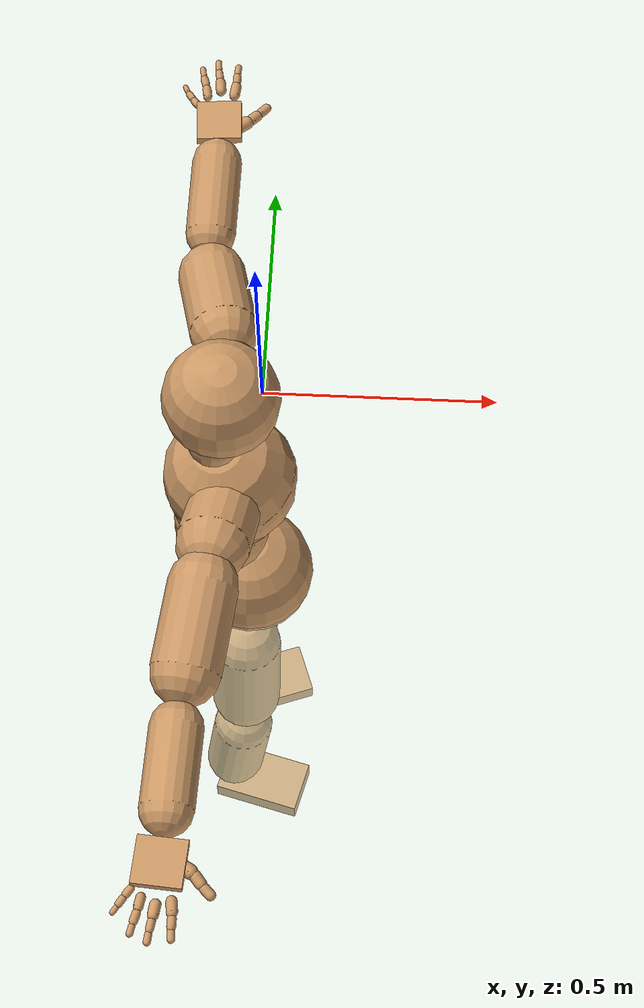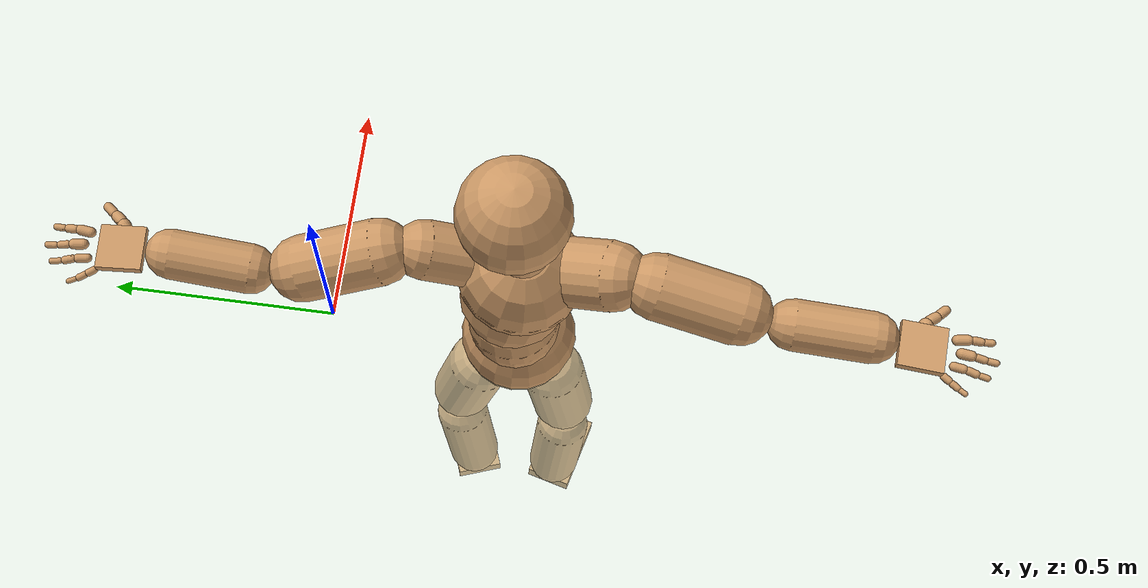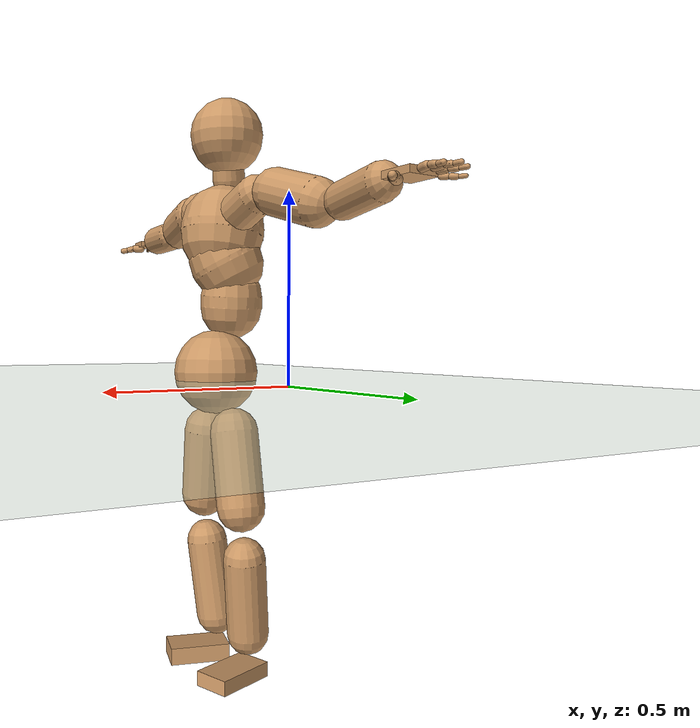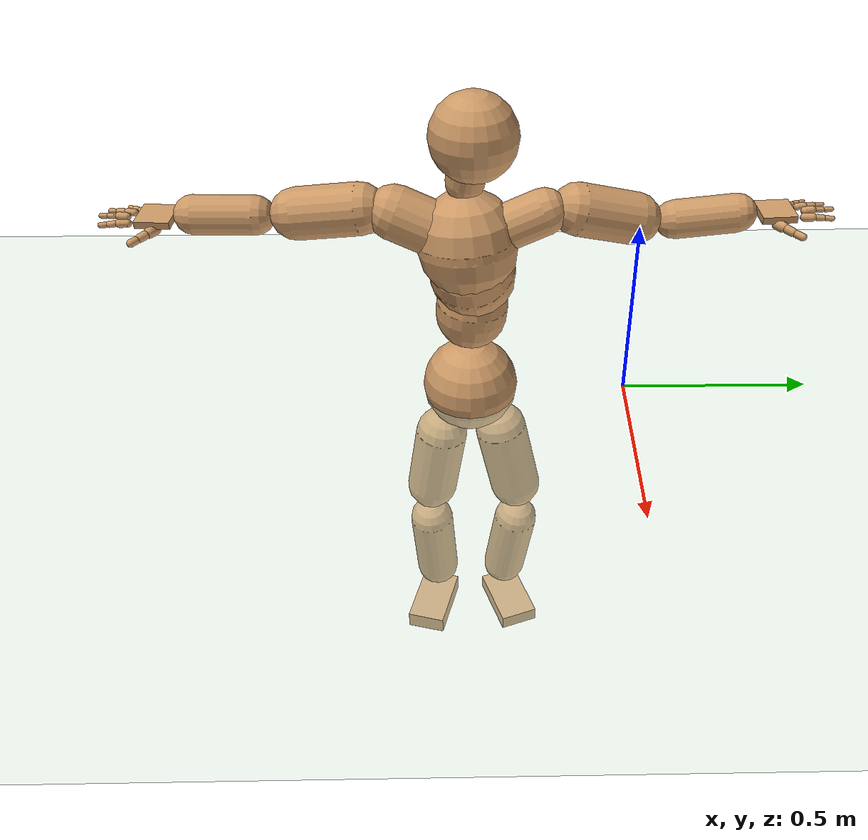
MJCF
<mujoco model="humanoid">
  <compiler coordinate="local" angle="radian"/>
  <default>
    <joint damping="0.0" armature="0.01" stiffness="0.0" limited="true"/>
    <geom conaffinity="1" condim="3" contype="7" margin="0.001" rgba="0.8 0.6 .4 1"/>
  </default>
  <asset>
    <texture type="skybox" builtin="gradient" rgb1=".4 .5 .6" rgb2="0 0 0" width="100" height="100"/>
    <texture builtin="flat" height="1278" mark="cross" markrgb="1 1 1" name="texgeom" random="0.01" rgb1="0.8 0.6 0.4" rgb2="0.8 0.6 0.4" type="cube" width="127"/>
    <texture builtin="checker" height="100" name="texplane" rgb1="0 0 0" rgb2="0.8 0.8 0.8" type="2d" width="100"/>
    <material name="MatPlane" reflectance="0.5" shininess="1" specular="1" texrepeat="60 60" texture="texplane"/>
    <material name="geom" texture="texgeom" texuniform="true"/>
  </asset>
  <worldbody>
    <light cutoff="100" diffuse="1 1 1" dir="-0 0 -1.3" directional="true" exponent="1" pos="0 0 1.3" specular=".1 .1 .1"/>
    <geom conaffinity="1" condim="3" name="floor" pos="0 0 0" rgba="0.8 0.9 0.8 1" size="100 100 .2" type="plane" material="MatPlane"/>
    <body name="Pelvis" pos="0.0021 -0.4209 0.0225">
      <freejoint name="Pelvis"/>
      <geom type="sphere" contype="1" conaffinity="1" density="500" size="0.1275" pos="0.0000 0.0000 0.0000" name="Pelvis"/>
      <body name="L_Hip" pos="-0.0188 0.0696 -0.1037">
        <joint name="L_Hip_x" type="hinge" pos="0 0 0" axis="1 0 0" stiffness="800" damping="80" armature="0.02" range="-180.0000 180.0000"/>
        <joint name="L_Hip_y" type="hinge" pos="0 0 0" axis="0 1 0" stiffness="800" damping="80" armature="0.02" range="-180.0000 180.0000"/>
        <joint name="L_Hip_z" type="hinge" pos="0 0 0" axis="0 0 1" stiffness="800" damping="80" armature="0.02" range="-180.0000 180.0000"/>
        <geom type="capsule" contype="1" conaffinity="1" density="500" fromto="0.0004 0.0150 -0.0736 0.0015 0.0602 -0.2943" size="0.0721" name="L_Hip"/>
        <body name="L_Knee" pos="0.0019 0.0752 -0.3679">
          <joint name="L_Knee_x" type="hinge" pos="0 0 0" axis="1 0 0" stiffness="800" damping="80" armature="0.02" range="-180.0000 180.0000"/>
          <joint name="L_Knee_y" type="hinge" pos="0 0 0" axis="0 1 0" stiffness="800" damping="80" armature="0.02" range="-180.0000 180.0000"/>
          <joint name="L_Knee_z" type="hinge" pos="0 0 0" axis="0 0 1" stiffness="800" damping="80" armature="0.02" range="-180.0000 180.0000"/>
          <geom type="capsule" contype="1" conaffinity="1" density="500" fromto="-0.0097 -0.0107 -0.0807 -0.0389 -0.0429 -0.3229" size="0.0632" name="L_Knee"/>
          <body name="L_Ankle" pos="-0.0486 -0.0536 -0.4036">
            <joint name="L_Ankle_x" type="hinge" pos="0 0 0" axis="1 0 0" stiffness="800" damping="80" armature="0.02" range="-180.0000 180.0000"/>
            <joint name="L_Ankle_y" type="hinge" pos="0 0 0" axis="0 1 0" stiffness="800" damping="80" armature="0.02" range="-180.0000 180.0000"/>
            <joint name="L_Ankle_z" type="hinge" pos="0 0 0" axis="0 0 1" stiffness="800" damping="80" armature="0.02" range="-180.0000 180.0000"/>
            <geom type="box" contype="1" conaffinity="1" density="500" pos="0.0681 0.0243 -0.0285" size="0.0946 0.0561 0.0223" quat="0.9854 0.0000 0.0000 0.1703" name="L_Ankle"/>
            <body name="L_Toe" pos="0.1361 0.0485 -0.0571">
              <joint name="L_Toe_x" type="hinge" pos="0 0 0" axis="1 0 0" stiffness="500" damping="50" armature="0.02" range="-180.0000 180.0000"/>
              <joint name="L_Toe_y" type="hinge" pos="0 0 0" axis="0 1 0" stiffness="500" damping="50" armature="0.02" range="-180.0000 180.0000"/>
              <joint name="L_Toe_z" type="hinge" pos="0 0 0" axis="0 0 1" stiffness="500" damping="50" armature="0.02" range="-180.0000 180.0000"/>
              <geom type="box" contype="1" conaffinity="1" density="500" pos="0.0000 0.0000 0.0295" size="0.0011 0.0026 0.0012" quat="0.9847 0.0000 0.0000 0.1744" name="L_Toe"/>
            </body>
          </body>
        </body>
      </body>
      <body name="R_Hip" pos="-0.0092 -0.0721 -0.1159">
        <joint name="R_Hip_x" type="hinge" pos="0 0 0" axis="1 0 0" stiffness="800" damping="80" armature="0.02" range="-180.0000 180.0000"/>
        <joint name="R_Hip_y" type="hinge" pos="0 0 0" axis="0 1 0" stiffness="800" damping="80" armature="0.02" range="-180.0000 180.0000"/>
        <joint name="R_Hip_z" type="hinge" pos="0 0 0" axis="0 0 1" stiffness="800" damping="80" armature="0.02" range="-180.0000 180.0000"/>
        <geom type="capsule" contype="1" conaffinity="1" density="500" fromto="-0.0017 -0.0112 -0.0702 -0.0069 -0.0446 -0.2809" size="0.0723" name="R_Hip"/>
        <body name="R_Knee" pos="-0.0086 -0.0558 -0.3511">
          <joint name="R_Knee_x" type="hinge" pos="0 0 0" axis="1 0 0" stiffness="800" damping="80" armature="0.02" range="-180.0000 180.0000"/>
          <joint name="R_Knee_y" type="hinge" pos="0 0 0" axis="0 1 0" stiffness="800" damping="80" armature="0.02" range="-180.0000 180.0000"/>
          <joint name="R_Knee_z" type="hinge" pos="0 0 0" axis="0 0 1" stiffness="800" damping="80" armature="0.02" range="-180.0000 180.0000"/>
          <geom type="capsule" contype="1" conaffinity="1" density="500" fromto="-0.0095 0.0038 -0.0831 -0.0380 0.0151 -0.3324" size="0.0635" name="R_Knee"/>
          <body name="R_Ankle" pos="-0.0476 0.0188 -0.4155">
            <joint name="R_Ankle_x" type="hinge" pos="0 0 0" axis="1 0 0" stiffness="800" damping="80" armature="0.02" range="-180.0000 180.0000"/>
            <joint name="R_Ankle_y" type="hinge" pos="0 0 0" axis="0 1 0" stiffness="800" damping="80" armature="0.02" range="-180.0000 180.0000"/>
            <joint name="R_Ankle_z" type="hinge" pos="0 0 0" axis="0 0 1" stiffness="800" damping="80" armature="0.02" range="-180.0000 180.0000"/>
            <geom type="box" contype="1" conaffinity="1" density="500" pos="0.0716 -0.0189 -0.0280" size="0.0946 0.0561 0.0266" quat="0.9917 0.0000 0.0000 -0.1284" name="R_Ankle"/>
            <body name="R_Toe" pos="0.1433 -0.0377 -0.0559">
              <joint name="R_Toe_x" type="hinge" pos="0 0 0" axis="1 0 0" stiffness="500" damping="50" armature="0.02" range="-180.0000 180.0000"/>
              <joint name="R_Toe_y" type="hinge" pos="0 0 0" axis="0 1 0" stiffness="500" damping="50" armature="0.02" range="-180.0000 180.0000"/>
              <joint name="R_Toe_z" type="hinge" pos="0 0 0" axis="0 0 1" stiffness="500" damping="50" armature="0.02" range="-180.0000 180.0000"/>
              <geom type="box" contype="1" conaffinity="1" density="500" pos="0.0000 0.0000 0.0246" size="0.0011 0.0026 0.0012" quat="0.9927 0.0000 0.0000 -0.1202" name="R_Toe"/>
            </body>
          </body>
        </body>
      </body>
      <body name="Torso" pos="-0.0511 -0.0027 0.1266">
        <joint name="Torso_x" type="hinge" pos="0 0 0" axis="1 0 0" stiffness="1000" damping="100" armature="0.02" range="-180.0000 180.0000"/>
        <joint name="Torso_y" type="hinge" pos="0 0 0" axis="0 1 0" stiffness="1000" damping="100" armature="0.02" range="-180.0000 180.0000"/>
        <joint name="Torso_z" type="hinge" pos="0 0 0" axis="0 0 1" stiffness="1000" damping="100" armature="0.02" range="-180.0000 180.0000"/>
        <geom type="capsule" contype="1" conaffinity="1" density="500" fromto="0.0017 0.0109 0.1049 0.0012 0.0073 0.0699" size="0.0947" name="Torso"/>
        <body name="Spine" pos="0.0029 0.0182 0.1748">
          <joint name="Spine_x" type="hinge" pos="0 0 0" axis="1 0 0" stiffness="1000" damping="100" armature="0.02" range="-180.0000 180.0000"/>
          <joint name="Spine_y" type="hinge" pos="0 0 0" axis="0 1 0" stiffness="1000" damping="100" armature="0.02" range="-180.0000 180.0000"/>
          <joint name="Spine_z" type="hinge" pos="0 0 0" axis="0 0 1" stiffness="1000" damping="100" armature="0.02" range="-180.0000 180.0000"/>
          <geom type="capsule" contype="1" conaffinity="1" density="500" fromto="0.0194 -0.0079 0.0398 0.0130 -0.0053 0.0265" size="0.1111" name="Spine"/>
          <body name="Chest" pos="0.0324 -0.0131 0.0663">
            <joint name="Chest_x" type="hinge" pos="0 0 0" axis="1 0 0" stiffness="1000" damping="100" armature="0.02" range="-180.0000 180.0000"/>
            <joint name="Chest_y" type="hinge" pos="0 0 0" axis="0 1 0" stiffness="1000" damping="100" armature="0.02" range="-180.0000 180.0000"/>
            <joint name="Chest_z" type="hinge" pos="0 0 0" axis="0 0 1" stiffness="1000" damping="100" armature="0.02" range="-180.0000 180.0000"/>
            <geom type="capsule" contype="1" conaffinity="1" density="500" fromto="-0.0103 -0.0052 0.0697 -0.0069 -0.0035 0.0465" size="0.1272" name="Chest"/>
            <body name="Neck" pos="-0.0377 -0.0151 0.1815">
              <joint name="Neck_x" type="hinge" pos="0 0 0" axis="1 0 0" stiffness="500" damping="50" armature="0.02" range="-180.0000 180.0000"/>
              <joint name="Neck_y" type="hinge" pos="0 0 0" axis="0 1 0" stiffness="500" damping="50" armature="0.02" range="-180.0000 180.0000"/>
              <joint name="Neck_z" type="hinge" pos="0 0 0" axis="0 0 1" stiffness="500" damping="50" armature="0.02" range="-180.0000 180.0000"/>
              <geom type="capsule" contype="1" conaffinity="1" density="500" fromto="0.0045 0.0055 0.0315 0.0181 0.0220 0.1261" size="0.0491" name="Neck"/>
              <body name="Head" pos="0.0226 0.0274 0.1576">
                <joint name="Head_x" type="hinge" pos="0 0 0" axis="1 0 0" stiffness="500" damping="50" armature="0.02" range="-180.0000 180.0000"/>
                <joint name="Head_y" type="hinge" pos="0 0 0" axis="0 1 0" stiffness="500" damping="50" armature="0.02" range="-180.0000 180.0000"/>
                <joint name="Head_z" type="hinge" pos="0 0 0" axis="0 0 1" stiffness="500" damping="50" armature="0.02" range="-180.0000 180.0000"/>
                <geom type="sphere" contype="1" conaffinity="1" density="500" size="0.1095" pos="0.0000 0.0000 0.0000" name="Head"/>
              </body>
            </body>
            <body name="L_Thorax" pos="-0.0056 0.048 0.0831">
              <joint name="L_Thorax_x" type="hinge" pos="0 0 0" axis="1 0 0" stiffness="500" damping="50" armature="0.02" range="-180.0000 180.0000"/>
              <joint name="L_Thorax_y" type="hinge" pos="0 0 0" axis="0 1 0" stiffness="500" damping="50" armature="0.02" range="-180.0000 180.0000"/>
              <joint name="L_Thorax_z" type="hinge" pos="0 0 0" axis="0 0 1" stiffness="500" damping="50" armature="0.02" range="-180.0000 180.0000"/>
              <geom type="capsule" contype="1" conaffinity="1" density="500" fromto="-0.0037 0.0341 0.0137 -0.0149 0.1363 0.0548" size="0.0593" name="L_Thorax"/>
              <body name="L_Shoulder" pos="-0.0186 0.1704 0.0685">
                <joint name="L_Shoulder_x" type="hinge" pos="0 0 0" axis="1 0 0" stiffness="500" damping="50" armature="0.02" range="-180.0000 180.0000"/>
                <joint name="L_Shoulder_y" type="hinge" pos="0 0 0" axis="0 1 0" stiffness="500" damping="50" armature="0.02" range="-180.0000 180.0000"/>
                <joint name="L_Shoulder_z" type="hinge" pos="0 0 0" axis="0 0 1" stiffness="500" damping="50" armature="0.02" range="-180.0000 180.0000"/>
                <geom type="capsule" contype="1" conaffinity="1" density="500" fromto="-0.0117 0.0498 -0.0159 -0.0467 0.1994 -0.0635" size="0.0669" name="L_Shoulder"/>
                <body name="L_Elbow" pos="-0.0584 0.2492 -0.0794">
                  <joint name="L_Elbow_x" type="hinge" pos="0 0 0" axis="1 0 0" stiffness="500" damping="50" armature="0.02" range="-720.0000 720.0000"/>
                  <joint name="L_Elbow_y" type="hinge" pos="0 0 0" axis="0 1 0" stiffness="500" damping="50" armature="0.02" range="-720.0000 720.0000"/>
                  <joint name="L_Elbow_z" type="hinge" pos="0 0 0" axis="0 0 1" stiffness="500" damping="50" armature="0.02" range="-720.0000 720.0000"/>
                  <geom type="capsule" contype="1" conaffinity="1" density="500" fromto="0.0010 0.0525 0.0062 0.0040 0.2100 0.0249" size="0.0496" name="L_Elbow"/>
                  <body name="L_Wrist" pos="0.0051 0.2625 0.0311">
                    <joint name="L_Wrist_x" type="hinge" pos="0 0 0" axis="1 0 0" stiffness="300" damping="30" armature="0.02" range="-180.0000 180.0000"/>
                    <joint name="L_Wrist_y" type="hinge" pos="0 0 0" axis="0 1 0" stiffness="300" damping="30" armature="0.02" range="-180.0000 180.0000"/>
                    <joint name="L_Wrist_z" type="hinge" pos="0 0 0" axis="0 0 1" stiffness="300" damping="30" armature="0.02" range="-180.0000 180.0000"/>
                    <geom type="box" contype="1" conaffinity="1" density="500" pos="-0.0030 0.0450 -0.0053" size="0.0448 0.0452 0.0092" quat="0.7303 0.0000 0.0000 -0.6831" name="L_Wrist"/>
                    <body name="L_Index1" pos="0.0225 0.1061 -0.0074">
                      <joint name="L_Index1_x" type="hinge" pos="0 0 0" axis="1 0 0" stiffness="100" damping="10" armature="0.02" range="-180.0000 180.0000"/>
                      <joint name="L_Index1_y" type="hinge" pos="0 0 0" axis="0 1 0" stiffness="100" damping="10" armature="0.02" range="-180.0000 180.0000"/>
                      <joint name="L_Index1_z" type="hinge" pos="0 0 0" axis="0 0 1" stiffness="100" damping="10" armature="0.02" range="-180.0000 180.0000"/>
                      <geom type="capsule" contype="1" conaffinity="1" density="500" fromto="0.0008 0.0066 0.0004 0.0031 0.0266 0.0015" size="0.0104" name="L_Index1"/>
                      <body name="L_Index2" pos="0.0038 0.0332 0.0019">
                        <joint name="L_Index2_x" type="hinge" pos="0 0 0" axis="1 0 0" stiffness="100" damping="10" armature="0.02" range="-180.0000 180.0000"/>
                        <joint name="L_Index2_y" type="hinge" pos="0 0 0" axis="0 1 0" stiffness="100" damping="10" armature="0.02" range="-180.0000 180.0000"/>
                        <joint name="L_Index2_z" type="hinge" pos="0 0 0" axis="0 0 1" stiffness="100" damping="10" armature="0.02" range="-180.0000 180.0000"/>
                        <geom type="capsule" contype="1" conaffinity="1" density="500" fromto="-0.0001 0.0046 -0.0006 -0.0003 0.0186 -0.0024" size="0.0083" name="L_Index2"/>
                        <body name="L_Index3" pos="-0.0004 0.0232 -0.003">
                          <joint name="L_Index3_x" type="hinge" pos="0 0 0" axis="1 0 0" stiffness="100" damping="10" armature="0.02" range="-180.0000 180.0000"/>
                          <joint name="L_Index3_y" type="hinge" pos="0 0 0" axis="0 1 0" stiffness="100" damping="10" armature="0.02" range="-180.0000 180.0000"/>
                          <joint name="L_Index3_z" type="hinge" pos="0 0 0" axis="0 0 1" stiffness="100" damping="10" armature="0.02" range="-180.0000 180.0000"/>
                          <geom type="capsule" contype="1" conaffinity="1" density="500" fromto="0.0003 0.0050 -0.0002 0.0013 0.0202 -0.0008" size="0.0069" name="L_Index3"/>
                        </body>
                      </body>
                    </body>
                    <body name="L_Middle1" pos="-0.0034 0.114 -0.004">
                      <joint name="L_Middle1_x" type="hinge" pos="0 0 0" axis="1 0 0" stiffness="100" damping="10" armature="0.02" range="-180.0000 180.0000"/>
                      <joint name="L_Middle1_y" type="hinge" pos="0 0 0" axis="0 1 0" stiffness="100" damping="10" armature="0.02" range="-180.0000 180.0000"/>
                      <joint name="L_Middle1_z" type="hinge" pos="0 0 0" axis="0 0 1" stiffness="100" damping="10" armature="0.02" range="-180.0000 180.0000"/>
                      <geom type="capsule" contype="1" conaffinity="1" density="500" fromto="-0.0008 0.0063 0.0002 -0.0034 0.0253 0.0007" size="0.0104" name="L_Middle1"/>
                      <body name="L_Middle2" pos="-0.0042 0.0317 0.0009">
                        <joint name="L_Middle2_x" type="hinge" pos="0 0 0" axis="1 0 0" stiffness="100" damping="10" armature="0.02" range="-180.0000 180.0000"/>
                        <joint name="L_Middle2_y" type="hinge" pos="0 0 0" axis="0 1 0" stiffness="100" damping="10" armature="0.02" range="-180.0000 180.0000"/>
                        <joint name="L_Middle2_z" type="hinge" pos="0 0 0" axis="0 0 1" stiffness="100" damping="10" armature="0.02" range="-180.0000 180.0000"/>
                        <geom type="capsule" contype="1" conaffinity="1" density="500" fromto="-0.0009 0.0048 -0.0005 -0.0035 0.0192 -0.0021" size="0.0076" name="L_Middle2"/>
                        <body name="L_Middle3" pos="-0.0044 0.0239 -0.0026">
                          <joint name="L_Middle3_x" type="hinge" pos="0 0 0" axis="1 0 0" stiffness="100" damping="10" armature="0.02" range="-180.0000 180.0000"/>
                          <joint name="L_Middle3_y" type="hinge" pos="0 0 0" axis="0 1 0" stiffness="100" damping="10" armature="0.02" range="-180.0000 180.0000"/>
                          <joint name="L_Middle3_z" type="hinge" pos="0 0 0" axis="0 0 1" stiffness="100" damping="10" armature="0.02" range="-180.0000 180.0000"/>
                          <geom type="capsule" contype="1" conaffinity="1" density="500" fromto="-0.0005 0.0052 -0.0001 -0.0019 0.0208 -0.0005" size="0.0065" name="L_Middle3"/>
                        </body>
                      </body>
                    </body>
                    <body name="L_Pinky1" pos="-0.0484 0.0875 -0.0138">
                      <joint name="L_Pinky1_x" type="hinge" pos="0 0 0" axis="1 0 0" stiffness="100" damping="10" armature="0.02" range="-180.0000 180.0000"/>
                      <joint name="L_Pinky1_y" type="hinge" pos="0 0 0" axis="0 1 0" stiffness="100" damping="10" armature="0.02" range="-180.0000 180.0000"/>
                      <joint name="L_Pinky1_z" type="hinge" pos="0 0 0" axis="0 0 1" stiffness="100" damping="10" armature="0.02" range="-180.0000 180.0000"/>
                      <geom type="capsule" contype="1" conaffinity="1" density="500" fromto="-0.0024 0.0034 -0.0004 -0.0098 0.0137 -0.0015" size="0.0075" name="L_Pinky1"/>
                      <body name="L_Pinky2" pos="-0.0122 0.0172 -0.0019">
                        <joint name="L_Pinky2_x" type="hinge" pos="0 0 0" axis="1 0 0" stiffness="100" damping="10" armature="0.02" range="-180.0000 180.0000"/>
                        <joint name="L_Pinky2_y" type="hinge" pos="0 0 0" axis="0 1 0" stiffness="100" damping="10" armature="0.02" range="-180.0000 180.0000"/>
                        <joint name="L_Pinky2_z" type="hinge" pos="0 0 0" axis="0 0 1" stiffness="100" damping="10" armature="0.02" range="-180.0000 180.0000"/>
                        <geom type="capsule" contype="1" conaffinity="1" density="500" fromto="-0.0022 0.0034 -0.0005 -0.0089 0.0135 -0.0019" size="0.007" name="L_Pinky2"/>
                        <body name="L_Pinky3" pos="-0.0111 0.0169 -0.0024">
                          <joint name="L_Pinky3_x" type="hinge" pos="0 0 0" axis="1 0 0" stiffness="100" damping="10" armature="0.02" range="-180.0000 180.0000"/>
                          <joint name="L_Pinky3_y" type="hinge" pos="0 0 0" axis="0 1 0" stiffness="100" damping="10" armature="0.02" range="-180.0000 180.0000"/>
                          <joint name="L_Pinky3_z" type="hinge" pos="0 0 0" axis="0 0 1" stiffness="100" damping="10" armature="0.02" range="-180.0000 180.0000"/>
                          <geom type="capsule" contype="1" conaffinity="1" density="500" fromto="-0.0018 0.0038 -0.0001 -0.0073 0.0151 -0.0003" size="0.0052" name="L_Pinky3"/>
                        </body>
                      </body>
                    </body>
                    <body name="L_Ring1" pos="-0.0299 0.1015 -0.0072">
                      <joint name="L_Ring1_x" type="hinge" pos="0 0 0" axis="1 0 0" stiffness="100" damping="10" armature="0.02" range="-180.0000 180.0000"/>
                      <joint name="L_Ring1_y" type="hinge" pos="0 0 0" axis="0 1 0" stiffness="100" damping="10" armature="0.02" range="-180.0000 180.0000"/>
                      <joint name="L_Ring1_z" type="hinge" pos="0 0 0" axis="0 0 1" stiffness="100" damping="10" armature="0.02" range="-180.0000 180.0000"/>
                      <geom type="capsule" contype="1" conaffinity="1" density="500" fromto="-0.0010 0.0059 0.0002 -0.0040 0.0237 0.0007" size="0.0089" name="L_Ring1"/>
                      <body name="L_Ring2" pos="-0.005 0.0296 0.0008">
                        <joint name="L_Ring2_x" type="hinge" pos="0 0 0" axis="1 0 0" stiffness="100" damping="10" armature="0.02" range="-180.0000 180.0000"/>
                        <joint name="L_Ring2_y" type="hinge" pos="0 0 0" axis="0 1 0" stiffness="100" damping="10" armature="0.02" range="-180.0000 180.0000"/>
                        <joint name="L_Ring2_z" type="hinge" pos="0 0 0" axis="0 0 1" stiffness="100" damping="10" armature="0.02" range="-180.0000 180.0000"/>
                        <geom type="capsule" contype="1" conaffinity="1" density="500" fromto="-0.0013 0.0048 -0.0005 -0.0054 0.0191 -0.0021" size="0.008" name="L_Ring2"/>
                        <body name="L_Ring3" pos="-0.0067 0.0238 -0.0026">
                          <joint name="L_Ring3_x" type="hinge" pos="0 0 0" axis="1 0 0" stiffness="100" damping="10" armature="0.02" range="-180.0000 180.0000"/>
                          <joint name="L_Ring3_y" type="hinge" pos="0 0 0" axis="0 1 0" stiffness="100" damping="10" armature="0.02" range="-180.0000 180.0000"/>
                          <joint name="L_Ring3_z" type="hinge" pos="0 0 0" axis="0 0 1" stiffness="100" damping="10" armature="0.02" range="-180.0000 180.0000"/>
                          <geom type="capsule" contype="1" conaffinity="1" density="500" fromto="-0.0009 0.0052 -0.0001 -0.0038 0.0207 -0.0005" size="0.0061" name="L_Ring3"/>
                        </body>
                      </body>
                    </body>
                    <body name="L_Thumb1" pos="0.0292 0.041 -0.0209">
                      <joint name="L_Thumb1_x" type="hinge" pos="0 0 0" axis="1 0 0" stiffness="100" damping="10" armature="0.02" range="-180.0000 180.0000"/>
                      <joint name="L_Thumb1_y" type="hinge" pos="0 0 0" axis="0 1 0" stiffness="100" damping="10" armature="0.02" range="-180.0000 180.0000"/>
                      <joint name="L_Thumb1_z" type="hinge" pos="0 0 0" axis="0 0 1" stiffness="100" damping="10" armature="0.02" range="-180.0000 180.0000"/>
                      <geom type="capsule" contype="1" conaffinity="1" density="500" fromto="0.0056 0.0034 0.0006 0.0222 0.0136 0.0024" size="0.0138" name="L_Thumb1"/>
                      <body name="L_Thumb2" pos="0.0278 0.0169 0.003">
                        <joint name="L_Thumb2_x" type="hinge" pos="0 0 0" axis="1 0 0" stiffness="100" damping="10" armature="0.02" range="-180.0000 180.0000"/>
                        <joint name="L_Thumb2_y" type="hinge" pos="0 0 0" axis="0 1 0" stiffness="100" damping="10" armature="0.02" range="-180.0000 180.0000"/>
                        <joint name="L_Thumb2_z" type="hinge" pos="0 0 0" axis="0 0 1" stiffness="100" damping="10" armature="0.02" range="-180.0000 180.0000"/>
                        <geom type="capsule" contype="1" conaffinity="1" density="500" fromto="0.0034 0.0041 -0.0010 0.0135 0.0164 -0.0042" size="0.0111" name="L_Thumb2"/>
                        <body name="L_Thumb3" pos="0.0169 0.0205 -0.0052">
                          <joint name="L_Thumb3_x" type="hinge" pos="0 0 0" axis="1 0 0" stiffness="100" damping="10" armature="0.02" range="-180.0000 180.0000"/>
                          <joint name="L_Thumb3_y" type="hinge" pos="0 0 0" axis="0 1 0" stiffness="100" damping="10" armature="0.02" range="-180.0000 180.0000"/>
                          <joint name="L_Thumb3_z" type="hinge" pos="0 0 0" axis="0 0 1" stiffness="100" damping="10" armature="0.02" range="-180.0000 180.0000"/>
                          <geom type="capsule" contype="1" conaffinity="1" density="500" fromto="0.0038 0.0045 -0.0006 0.0151 0.0180 -0.0026" size="0.0097" name="L_Thumb3"/>
                        </body>
                      </body>
                    </body>
                  </body>
                </body>
              </body>
            </body>
            <body name="R_Thorax" pos="-0.0084 -0.0589 0.0841">
              <joint name="R_Thorax_x" type="hinge" pos="0 0 0" axis="1 0 0" stiffness="500" damping="50" armature="0.02" range="-180.0000 180.0000"/>
              <joint name="R_Thorax_y" type="hinge" pos="0 0 0" axis="0 1 0" stiffness="500" damping="50" armature="0.02" range="-180.0000 180.0000"/>
              <joint name="R_Thorax_z" type="hinge" pos="0 0 0" axis="0 0 1" stiffness="500" damping="50" armature="0.02" range="-180.0000 180.0000"/>
              <geom type="capsule" contype="1" conaffinity="1" density="500" fromto="-0.0045 -0.0312 0.0130 -0.0179 -0.1247 0.0518" size="0.0699" name="R_Thorax"/>
              <body name="R_Shoulder" pos="-0.0223 -0.1559 0.0648">
                <joint name="R_Shoulder_x" type="hinge" pos="0 0 0" axis="1 0 0" stiffness="500" damping="50" armature="0.02" range="-180.0000 180.0000"/>
                <joint name="R_Shoulder_y" type="hinge" pos="0 0 0" axis="0 1 0" stiffness="500" damping="50" armature="0.02" range="-180.0000 180.0000"/>
                <joint name="R_Shoulder_z" type="hinge" pos="0 0 0" axis="0 0 1" stiffness="500" damping="50" armature="0.02" range="-180.0000 180.0000"/>
                <geom type="capsule" contype="1" conaffinity="1" density="500" fromto="-0.0073 -0.0539 -0.0081 -0.0291 -0.2154 -0.0324" size="0.0663" name="R_Shoulder"/>
                <body name="R_Elbow" pos="-0.0363 -0.2693 -0.0404">
                  <joint name="R_Elbow_x" type="hinge" pos="0 0 0" axis="1 0 0" stiffness="500" damping="50" armature="0.02" range="-720.0000 720.0000"/>
                  <joint name="R_Elbow_y" type="hinge" pos="0 0 0" axis="0 1 0" stiffness="500" damping="50" armature="0.02" range="-720.0000 720.0000"/>
                  <joint name="R_Elbow_z" type="hinge" pos="0 0 0" axis="0 0 1" stiffness="500" damping="50" armature="0.02" range="-720.0000 720.0000"/>
                  <geom type="capsule" contype="1" conaffinity="1" density="500" fromto="-0.0019 -0.0511 -0.0002 -0.0076 -0.2045 -0.0008" size="0.0507" name="R_Elbow"/>
                  <body name="R_Wrist" pos="-0.0095 -0.2557 -0.001">
                    <joint name="R_Wrist_x" type="hinge" pos="0 0 0" axis="1 0 0" stiffness="300" damping="30" armature="0.02" range="-180.0000 180.0000"/>
                    <joint name="R_Wrist_y" type="hinge" pos="0 0 0" axis="0 1 0" stiffness="300" damping="30" armature="0.02" range="-180.0000 180.0000"/>
                    <joint name="R_Wrist_z" type="hinge" pos="0 0 0" axis="0 0 1" stiffness="300" damping="30" armature="0.02" range="-180.0000 180.0000"/>
                    <geom type="box" contype="1" conaffinity="1" density="500" pos="-0.0035 -0.0447 -0.0074" size="0.0448 0.0463 0.0094" quat="0.7342 0.0000 0.0000 0.6790" name="R_Wrist"/>
                    <body name="R_Index1" pos="0.0215 -0.1054 -0.0116">
                      <joint name="R_Index1_x" type="hinge" pos="0 0 0" axis="1 0 0" stiffness="100" damping="10" armature="0.02" range="-180.0000 180.0000"/>
                      <joint name="R_Index1_y" type="hinge" pos="0 0 0" axis="0 1 0" stiffness="100" damping="10" armature="0.02" range="-180.0000 180.0000"/>
                      <joint name="R_Index1_z" type="hinge" pos="0 0 0" axis="0 0 1" stiffness="100" damping="10" armature="0.02" range="-180.0000 180.0000"/>
                      <geom type="capsule" contype="1" conaffinity="1" density="500" fromto="0.0008 -0.0066 0.0004 0.0031 -0.0266 0.0015" size="0.0104" name="R_Index1"/>
                      <body name="R_Index2" pos="0.0038 -0.0332 0.0019">
                        <joint name="R_Index2_x" type="hinge" pos="0 0 0" axis="1 0 0" stiffness="100" damping="10" armature="0.02" range="-180.0000 180.0000"/>
                        <joint name="R_Index2_y" type="hinge" pos="0 0 0" axis="0 1 0" stiffness="100" damping="10" armature="0.02" range="-180.0000 180.0000"/>
                        <joint name="R_Index2_z" type="hinge" pos="0 0 0" axis="0 0 1" stiffness="100" damping="10" armature="0.02" range="-180.0000 180.0000"/>
                        <geom type="capsule" contype="1" conaffinity="1" density="500" fromto="-0.0001 -0.0046 -0.0006 -0.0003 -0.0186 -0.0024" size="0.0083" name="R_Index2"/>
                        <body name="R_Index3" pos="-0.0004 -0.0232 -0.003">
                          <joint name="R_Index3_x" type="hinge" pos="0 0 0" axis="1 0 0" stiffness="100" damping="10" armature="0.02" range="-180.0000 180.0000"/>
                          <joint name="R_Index3_y" type="hinge" pos="0 0 0" axis="0 1 0" stiffness="100" damping="10" armature="0.02" range="-180.0000 180.0000"/>
                          <joint name="R_Index3_z" type="hinge" pos="0 0 0" axis="0 0 1" stiffness="100" damping="10" armature="0.02" range="-180.0000 180.0000"/>
                          <geom type="capsule" contype="1" conaffinity="1" density="500" fromto="0.0003 -0.0042 -0.0002 0.0013 -0.0170 -0.0008" size="0.0072" name="R_Index3"/>
                        </body>
                      </body>
                    </body>
                    <body name="R_Middle1" pos="-0.0044 -0.1134 -0.0081">
                      <joint name="R_Middle1_x" type="hinge" pos="0 0 0" axis="1 0 0" stiffness="100" damping="10" armature="0.02" range="-180.0000 180.0000"/>
                      <joint name="R_Middle1_y" type="hinge" pos="0 0 0" axis="0 1 0" stiffness="100" damping="10" armature="0.02" range="-180.0000 180.0000"/>
                      <joint name="R_Middle1_z" type="hinge" pos="0 0 0" axis="0 0 1" stiffness="100" damping="10" armature="0.02" range="-180.0000 180.0000"/>
                      <geom type="capsule" contype="1" conaffinity="1" density="500" fromto="-0.0008 -0.0063 0.0002 -0.0034 -0.0253 0.0007" size="0.0104" name="R_Middle1"/>
                      <body name="R_Middle2" pos="-0.0042 -0.0317 0.0009">
                        <joint name="R_Middle2_x" type="hinge" pos="0 0 0" axis="1 0 0" stiffness="100" damping="10" armature="0.02" range="-180.0000 180.0000"/>
                        <joint name="R_Middle2_y" type="hinge" pos="0 0 0" axis="0 1 0" stiffness="100" damping="10" armature="0.02" range="-180.0000 180.0000"/>
                        <joint name="R_Middle2_z" type="hinge" pos="0 0 0" axis="0 0 1" stiffness="100" damping="10" armature="0.02" range="-180.0000 180.0000"/>
                        <geom type="capsule" contype="1" conaffinity="1" density="500" fromto="-0.0009 -0.0048 -0.0005 -0.0035 -0.0192 -0.0021" size="0.0076" name="R_Middle2"/>
                        <body name="R_Middle3" pos="-0.0044 -0.0239 -0.0026">
                          <joint name="R_Middle3_x" type="hinge" pos="0 0 0" axis="1 0 0" stiffness="100" damping="10" armature="0.02" range="-180.0000 180.0000"/>
                          <joint name="R_Middle3_y" type="hinge" pos="0 0 0" axis="0 1 0" stiffness="100" damping="10" armature="0.02" range="-180.0000 180.0000"/>
                          <joint name="R_Middle3_z" type="hinge" pos="0 0 0" axis="0 0 1" stiffness="100" damping="10" armature="0.02" range="-180.0000 180.0000"/>
                          <geom type="capsule" contype="1" conaffinity="1" density="500" fromto="-0.0005 -0.0044 -0.0001 -0.0019 -0.0176 -0.0005" size="0.0068" name="R_Middle3"/>
                        </body>
                      </body>
                    </body>
                    <body name="R_Pinky1" pos="-0.0494 -0.0868 -0.0179">
                      <joint name="R_Pinky1_x" type="hinge" pos="0 0 0" axis="1 0 0" stiffness="100" damping="10" armature="0.02" range="-180.0000 180.0000"/>
                      <joint name="R_Pinky1_y" type="hinge" pos="0 0 0" axis="0 1 0" stiffness="100" damping="10" armature="0.02" range="-180.0000 180.0000"/>
                      <joint name="R_Pinky1_z" type="hinge" pos="0 0 0" axis="0 0 1" stiffness="100" damping="10" armature="0.02" range="-180.0000 180.0000"/>
                      <geom type="capsule" contype="1" conaffinity="1" density="500" fromto="-0.0024 -0.0034 -0.0004 -0.0098 -0.0137 -0.0015" size="0.0075" name="R_Pinky1"/>
                      <body name="R_Pinky2" pos="-0.0122 -0.0172 -0.0019">
                        <joint name="R_Pinky2_x" type="hinge" pos="0 0 0" axis="1 0 0" stiffness="100" damping="10" armature="0.02" range="-180.0000 180.0000"/>
                        <joint name="R_Pinky2_y" type="hinge" pos="0 0 0" axis="0 1 0" stiffness="100" damping="10" armature="0.02" range="-180.0000 180.0000"/>
                        <joint name="R_Pinky2_z" type="hinge" pos="0 0 0" axis="0 0 1" stiffness="100" damping="10" armature="0.02" range="-180.0000 180.0000"/>
                        <geom type="capsule" contype="1" conaffinity="1" density="500" fromto="-0.0022 -0.0034 -0.0005 -0.0089 -0.0135 -0.0019" size="0.007" name="R_Pinky2"/>
                        <body name="R_Pinky3" pos="-0.0111 -0.0169 -0.0024">
                          <joint name="R_Pinky3_x" type="hinge" pos="0 0 0" axis="1 0 0" stiffness="100" damping="10" armature="0.02" range="-180.0000 180.0000"/>
                          <joint name="R_Pinky3_y" type="hinge" pos="0 0 0" axis="0 1 0" stiffness="100" damping="10" armature="0.02" range="-180.0000 180.0000"/>
                          <joint name="R_Pinky3_z" type="hinge" pos="0 0 0" axis="0 0 1" stiffness="100" damping="10" armature="0.02" range="-180.0000 180.0000"/>
                          <geom type="capsule" contype="1" conaffinity="1" density="500" fromto="-0.0018 -0.0030 -0.0001 -0.0073 -0.0119 -0.0003" size="0.0054" name="R_Pinky3"/>
                        </body>
                      </body>
                    </body>
                    <body name="R_Ring1" pos="-0.0309 -0.1009 -0.0114">
                      <joint name="R_Ring1_x" type="hinge" pos="0 0 0" axis="1 0 0" stiffness="100" damping="10" armature="0.02" range="-180.0000 180.0000"/>
                      <joint name="R_Ring1_y" type="hinge" pos="0 0 0" axis="0 1 0" stiffness="100" damping="10" armature="0.02" range="-180.0000 180.0000"/>
                      <joint name="R_Ring1_z" type="hinge" pos="0 0 0" axis="0 0 1" stiffness="100" damping="10" armature="0.02" range="-180.0000 180.0000"/>
                      <geom type="capsule" contype="1" conaffinity="1" density="500" fromto="-0.0010 -0.0059 0.0002 -0.0040 -0.0237 0.0007" size="0.0089" name="R_Ring1"/>
                      <body name="R_Ring2" pos="-0.005 -0.0296 0.0008">
                        <joint name="R_Ring2_x" type="hinge" pos="0 0 0" axis="1 0 0" stiffness="100" damping="10" armature="0.02" range="-180.0000 180.0000"/>
                        <joint name="R_Ring2_y" type="hinge" pos="0 0 0" axis="0 1 0" stiffness="100" damping="10" armature="0.02" range="-180.0000 180.0000"/>
                        <joint name="R_Ring2_z" type="hinge" pos="0 0 0" axis="0 0 1" stiffness="100" damping="10" armature="0.02" range="-180.0000 180.0000"/>
                        <geom type="capsule" contype="1" conaffinity="1" density="500" fromto="-0.0013 -0.0048 -0.0005 -0.0054 -0.0191 -0.0021" size="0.008" name="R_Ring2"/>
                        <body name="R_Ring3" pos="-0.0067 -0.0238 -0.0026">
                          <joint name="R_Ring3_x" type="hinge" pos="0 0 0" axis="1 0 0" stiffness="100" damping="10" armature="0.02" range="-180.0000 180.0000"/>
                          <joint name="R_Ring3_y" type="hinge" pos="0 0 0" axis="0 1 0" stiffness="100" damping="10" armature="0.02" range="-180.0000 180.0000"/>
                          <joint name="R_Ring3_z" type="hinge" pos="0 0 0" axis="0 0 1" stiffness="100" damping="10" armature="0.02" range="-180.0000 180.0000"/>
                          <geom type="capsule" contype="1" conaffinity="1" density="500" fromto="-0.0009 -0.0044 -0.0001 -0.0038 -0.0175 -0.0005" size="0.0064" name="R_Ring3"/>
                        </body>
                      </body>
                    </body>
                    <body name="R_Thumb1" pos="0.0282 -0.0403 -0.025">
                      <joint name="R_Thumb1_x" type="hinge" pos="0 0 0" axis="1 0 0" stiffness="100" damping="10" armature="0.02" range="-180.0000 180.0000"/>
                      <joint name="R_Thumb1_y" type="hinge" pos="0 0 0" axis="0 1 0" stiffness="100" damping="10" armature="0.02" range="-180.0000 180.0000"/>
                      <joint name="R_Thumb1_z" type="hinge" pos="0 0 0" axis="0 0 1" stiffness="100" damping="10" armature="0.02" range="-180.0000 180.0000"/>
                      <geom type="capsule" contype="1" conaffinity="1" density="500" fromto="0.0056 -0.0034 0.0006 0.0222 -0.0136 0.0024" size="0.0138" name="R_Thumb1"/>
                      <body name="R_Thumb2" pos="0.0278 -0.0169 0.003">
                        <joint name="R_Thumb2_x" type="hinge" pos="0 0 0" axis="1 0 0" stiffness="100" damping="10" armature="0.02" range="-180.0000 180.0000"/>
                        <joint name="R_Thumb2_y" type="hinge" pos="0 0 0" axis="0 1 0" stiffness="100" damping="10" armature="0.02" range="-180.0000 180.0000"/>
                        <joint name="R_Thumb2_z" type="hinge" pos="0 0 0" axis="0 0 1" stiffness="100" damping="10" armature="0.02" range="-180.0000 180.0000"/>
                        <geom type="capsule" contype="1" conaffinity="1" density="500" fromto="0.0034 -0.0041 -0.0010 0.0135 -0.0164 -0.0042" size="0.0111" name="R_Thumb2"/>
                        <body name="R_Thumb3" pos="0.0169 -0.0205 -0.0052">
                          <joint name="R_Thumb3_x" type="hinge" pos="0 0 0" axis="1 0 0" stiffness="100" damping="10" armature="0.02" range="-180.0000 180.0000"/>
                          <joint name="R_Thumb3_y" type="hinge" pos="0 0 0" axis="0 1 0" stiffness="100" damping="10" armature="0.02" range="-180.0000 180.0000"/>
                          <joint name="R_Thumb3_z" type="hinge" pos="0 0 0" axis="0 0 1" stiffness="100" damping="10" armature="0.02" range="-180.0000 180.0000"/>
                          <geom type="capsule" contype="1" conaffinity="1" density="500" fromto="0.0038 -0.0037 -0.0006 0.0151 -0.0148 -0.0026" size="0.0099" name="R_Thumb3"/>
                        </body>
                      </body>
                    </body>
                  </body>
                </body>
              </body>
            </body>
          </body>
        </body>
      </body>
    </body>
  </worldbody>
  <actuator>
    <motor name="L_Hip_x" joint="L_Hip_x" gear="500"/>
    <motor name="L_Hip_y" joint="L_Hip_y" gear="500"/>
    <motor name="L_Hip_z" joint="L_Hip_z" gear="500"/>
    <motor name="L_Knee_x" joint="L_Knee_x" gear="500"/>
    <motor name="L_Knee_y" joint="L_Knee_y" gear="500"/>
    <motor name="L_Knee_z" joint="L_Knee_z" gear="500"/>
    <motor name="L_Ankle_x" joint="L_Ankle_x" gear="500"/>
    <motor name="L_Ankle_y" joint="L_Ankle_y" gear="500"/>
    <motor name="L_Ankle_z" joint="L_Ankle_z" gear="500"/>
    <motor name="L_Toe_x" joint="L_Toe_x" gear="500"/>
    <motor name="L_Toe_y" joint="L_Toe_y" gear="500"/>
    <motor name="L_Toe_z" joint="L_Toe_z" gear="500"/>
    <motor name="R_Hip_x" joint="R_Hip_x" gear="500"/>
    <motor name="R_Hip_y" joint="R_Hip_y" gear="500"/>
    <motor name="R_Hip_z" joint="R_Hip_z" gear="500"/>
    <motor name="R_Knee_x" joint="R_Knee_x" gear="500"/>
    <motor name="R_Knee_y" joint="R_Knee_y" gear="500"/>
    <motor name="R_Knee_z" joint="R_Knee_z" gear="500"/>
    <motor name="R_Ankle_x" joint="R_Ankle_x" gear="500"/>
    <motor name="R_Ankle_y" joint="R_Ankle_y" gear="500"/>
    <motor name="R_Ankle_z" joint="R_Ankle_z" gear="500"/>
    <motor name="R_Toe_x" joint="R_Toe_x" gear="500"/>
    <motor name="R_Toe_y" joint="R_Toe_y" gear="500"/>
    <motor name="R_Toe_z" joint="R_Toe_z" gear="500"/>
    <motor name="Torso_x" joint="Torso_x" gear="500"/>
    <motor name="Torso_y" joint="Torso_y" gear="500"/>
    <motor name="Torso_z" joint="Torso_z" gear="500"/>
    <motor name="Spine_x" joint="Spine_x" gear="500"/>
    <motor name="Spine_y" joint="Spine_y" gear="500"/>
    <motor name="Spine_z" joint="Spine_z" gear="500"/>
    <motor name="Chest_x" joint="Chest_x" gear="500"/>
    <motor name="Chest_y" joint="Chest_y" gear="500"/>
    <motor name="Chest_z" joint="Chest_z" gear="500"/>
    <motor name="Neck_x" joint="Neck_x" gear="500"/>
    <motor name="Neck_y" joint="Neck_y" gear="500"/>
    <motor name="Neck_z" joint="Neck_z" gear="500"/>
    <motor name="Head_x" joint="Head_x" gear="500"/>
    <motor name="Head_y" joint="Head_y" gear="500"/>
    <motor name="Head_z" joint="Head_z" gear="500"/>
    <motor name="L_Thorax_x" joint="L_Thorax_x" gear="500"/>
    <motor name="L_Thorax_y" joint="L_Thorax_y" gear="500"/>
    <motor name="L_Thorax_z" joint="L_Thorax_z" gear="500"/>
    <motor name="L_Shoulder_x" joint="L_Shoulder_x" gear="500"/>
    <motor name="L_Shoulder_y" joint="L_Shoulder_y" gear="500"/>
    <motor name="L_Shoulder_z" joint="L_Shoulder_z" gear="500"/>
    <motor name="L_Elbow_x" joint="L_Elbow_x" gear="500"/>
    <motor name="L_Elbow_y" joint="L_Elbow_y" gear="500"/>
    <motor name="L_Elbow_z" joint="L_Elbow_z" gear="500"/>
    <motor name="L_Wrist_x" joint="L_Wrist_x" gear="500"/>
    <motor name="L_Wrist_y" joint="L_Wrist_y" gear="500"/>
    <motor name="L_Wrist_z" joint="L_Wrist_z" gear="500"/>
    <motor name="L_Index1_x" joint="L_Index1_x" gear="500"/>
    <motor name="L_Index1_y" joint="L_Index1_y" gear="500"/>
    <motor name="L_Index1_z" joint="L_Index1_z" gear="500"/>
    <motor name="L_Index2_x" joint="L_Index2_x" gear="500"/>
    <motor name="L_Index2_y" joint="L_Index2_y" gear="500"/>
    <motor name="L_Index2_z" joint="L_Index2_z" gear="500"/>
    <motor name="L_Index3_x" joint="L_Index3_x" gear="500"/>
    <motor name="L_Index3_y" joint="L_Index3_y" gear="500"/>
    <motor name="L_Index3_z" joint="L_Index3_z" gear="500"/>
    <motor name="L_Middle1_x" joint="L_Middle1_x" gear="500"/>
    <motor name="L_Middle1_y" joint="L_Middle1_y" gear="500"/>
    <motor name="L_Middle1_z" joint="L_Middle1_z" gear="500"/>
    <motor name="L_Middle2_x" joint="L_Middle2_x" gear="500"/>
    <motor name="L_Middle2_y" joint="L_Middle2_y" gear="500"/>
    <motor name="L_Middle2_z" joint="L_Middle2_z" gear="500"/>
    <motor name="L_Middle3_x" joint="L_Middle3_x" gear="500"/>
    <motor name="L_Middle3_y" joint="L_Middle3_y" gear="500"/>
    <motor name="L_Middle3_z" joint="L_Middle3_z" gear="500"/>
    <motor name="L_Pinky1_x" joint="L_Pinky1_x" gear="500"/>
    <motor name="L_Pinky1_y" joint="L_Pinky1_y" gear="500"/>
    <motor name="L_Pinky1_z" joint="L_Pinky1_z" gear="500"/>
    <motor name="L_Pinky2_x" joint="L_Pinky2_x" gear="500"/>
    <motor name="L_Pinky2_y" joint="L_Pinky2_y" gear="500"/>
    <motor name="L_Pinky2_z" joint="L_Pinky2_z" gear="500"/>
    <motor name="L_Pinky3_x" joint="L_Pinky3_x" gear="500"/>
    <motor name="L_Pinky3_y" joint="L_Pinky3_y" gear="500"/>
    <motor name="L_Pinky3_z" joint="L_Pinky3_z" gear="500"/>
    <motor name="L_Ring1_x" joint="L_Ring1_x" gear="500"/>
    <motor name="L_Ring1_y" joint="L_Ring1_y" gear="500"/>
    <motor name="L_Ring1_z" joint="L_Ring1_z" gear="500"/>
    <motor name="L_Ring2_x" joint="L_Ring2_x" gear="500"/>
    <motor name="L_Ring2_y" joint="L_Ring2_y" gear="500"/>
    <motor name="L_Ring2_z" joint="L_Ring2_z" gear="500"/>
    <motor name="L_Ring3_x" joint="L_Ring3_x" gear="500"/>
    <motor name="L_Ring3_y" joint="L_Ring3_y" gear="500"/>
    <motor name="L_Ring3_z" joint="L_Ring3_z" gear="500"/>
    <motor name="L_Thumb1_x" joint="L_Thumb1_x" gear="500"/>
    <motor name="L_Thumb1_y" joint="L_Thumb1_y" gear="500"/>
    <motor name="L_Thumb1_z" joint="L_Thumb1_z" gear="500"/>
    <motor name="L_Thumb2_x" joint="L_Thumb2_x" gear="500"/>
    <motor name="L_Thumb2_y" joint="L_Thumb2_y" gear="500"/>
    <motor name="L_Thumb2_z" joint="L_Thumb2_z" gear="500"/>
    <motor name="L_Thumb3_x" joint="L_Thumb3_x" gear="500"/>
    <motor name="L_Thumb3_y" joint="L_Thumb3_y" gear="500"/>
    <motor name="L_Thumb3_z" joint="L_Thumb3_z" gear="500"/>
    <motor name="R_Thorax_x" joint="R_Thorax_x" gear="500"/>
    <motor name="R_Thorax_y" joint="R_Thorax_y" gear="500"/>
    <motor name="R_Thorax_z" joint="R_Thorax_z" gear="500"/>
    <motor name="R_Shoulder_x" joint="R_Shoulder_x" gear="500"/>
    <motor name="R_Shoulder_y" joint="R_Shoulder_y" gear="500"/>
    <motor name="R_Shoulder_z" joint="R_Shoulder_z" gear="500"/>
    <motor name="R_Elbow_x" joint="R_Elbow_x" gear="500"/>
    <motor name="R_Elbow_y" joint="R_Elbow_y" gear="500"/>
    <motor name="R_Elbow_z" joint="R_Elbow_z" gear="500"/>
    <motor name="R_Wrist_x" joint="R_Wrist_x" gear="500"/>
    <motor name="R_Wrist_y" joint="R_Wrist_y" gear="500"/>
    <motor name="R_Wrist_z" joint="R_Wrist_z" gear="500"/>
    <motor name="R_Index1_x" joint="R_Index1_x" gear="500"/>
    <motor name="R_Index1_y" joint="R_Index1_y" gear="500"/>
    <motor name="R_Index1_z" joint="R_Index1_z" gear="500"/>
    <motor name="R_Index2_x" joint="R_Index2_x" gear="500"/>
    <motor name="R_Index2_y" joint="R_Index2_y" gear="500"/>
    <motor name="R_Index2_z" joint="R_Index2_z" gear="500"/>
    <motor name="R_Index3_x" joint="R_Index3_x" gear="500"/>
    <motor name="R_Index3_y" joint="R_Index3_y" gear="500"/>
    <motor name="R_Index3_z" joint="R_Index3_z" gear="500"/>
    <motor name="R_Middle1_x" joint="R_Middle1_x" gear="500"/>
    <motor name="R_Middle1_y" joint="R_Middle1_y" gear="500"/>
    <motor name="R_Middle1_z" joint="R_Middle1_z" gear="500"/>
    <motor name="R_Middle2_x" joint="R_Middle2_x" gear="500"/>
    <motor name="R_Middle2_y" joint="R_Middle2_y" gear="500"/>
    <motor name="R_Middle2_z" joint="R_Middle2_z" gear="500"/>
    <motor name="R_Middle3_x" joint="R_Middle3_x" gear="500"/>
    <motor name="R_Middle3_y" joint="R_Middle3_y" gear="500"/>
    <motor name="R_Middle3_z" joint="R_Middle3_z" gear="500"/>
    <motor name="R_Pinky1_x" joint="R_Pinky1_x" gear="500"/>
    <motor name="R_Pinky1_y" joint="R_Pinky1_y" gear="500"/>
    <motor name="R_Pinky1_z" joint="R_Pinky1_z" gear="500"/>
    <motor name="R_Pinky2_x" joint="R_Pinky2_x" gear="500"/>
    <motor name="R_Pinky2_y" joint="R_Pinky2_y" gear="500"/>
    <motor name="R_Pinky2_z" joint="R_Pinky2_z" gear="500"/>
    <motor name="R_Pinky3_x" joint="R_Pinky3_x" gear="500"/>
    <motor name="R_Pinky3_y" joint="R_Pinky3_y" gear="500"/>
    <motor name="R_Pinky3_z" joint="R_Pinky3_z" gear="500"/>
    <motor name="R_Ring1_x" joint="R_Ring1_x" gear="500"/>
    <motor name="R_Ring1_y" joint="R_Ring1_y" gear="500"/>
    <motor name="R_Ring1_z" joint="R_Ring1_z" gear="500"/>
    <motor name="R_Ring2_x" joint="R_Ring2_x" gear="500"/>
    <motor name="R_Ring2_y" joint="R_Ring2_y" gear="500"/>
    <motor name="R_Ring2_z" joint="R_Ring2_z" gear="500"/>
    <motor name="R_Ring3_x" joint="R_Ring3_x" gear="500"/>
    <motor name="R_Ring3_y" joint="R_Ring3_y" gear="500"/>
    <motor name="R_Ring3_z" joint="R_Ring3_z" gear="500"/>
    <motor name="R_Thumb1_x" joint="R_Thumb1_x" gear="500"/>
    <motor name="R_Thumb1_y" joint="R_Thumb1_y" gear="500"/>
    <motor name="R_Thumb1_z" joint="R_Thumb1_z" gear="500"/>
    <motor name="R_Thumb2_x" joint="R_Thumb2_x" gear="500"/>
    <motor name="R_Thumb2_y" joint="R_Thumb2_y" gear="500"/>
    <motor name="R_Thumb2_z" joint="R_Thumb2_z" gear="500"/>
    <motor name="R_Thumb3_x" joint="R_Thumb3_x" gear="500"/>
    <motor name="R_Thumb3_y" joint="R_Thumb3_y" gear="500"/>
    <motor name="R_Thumb3_z" joint="R_Thumb3_z" gear="500"/>
  </actuator>
  <contact>
    <exclude body1="Torso" body2="Chest"/>
    <exclude body1="Head" body2="Chest"/>
    <exclude body1="R_Knee" body2="R_Toe"/>
    <exclude body1="R_Knee" body2="L_Ankle"/>
    <exclude body1="R_Knee" body2="L_Toe"/>
    <exclude body1="L_Knee" body2="L_Toe"/>
    <exclude body1="L_Knee" body2="R_Ankle"/>
    <exclude body1="L_Knee" body2="R_Toe"/>
    <exclude body1="L_Shoulder" body2="Chest"/>
    <exclude body1="R_Shoulder" body2="Chest"/>
  </contact>
  <sensor/>
  <size njmax="700" nconmax="700"/>
</mujoco>
